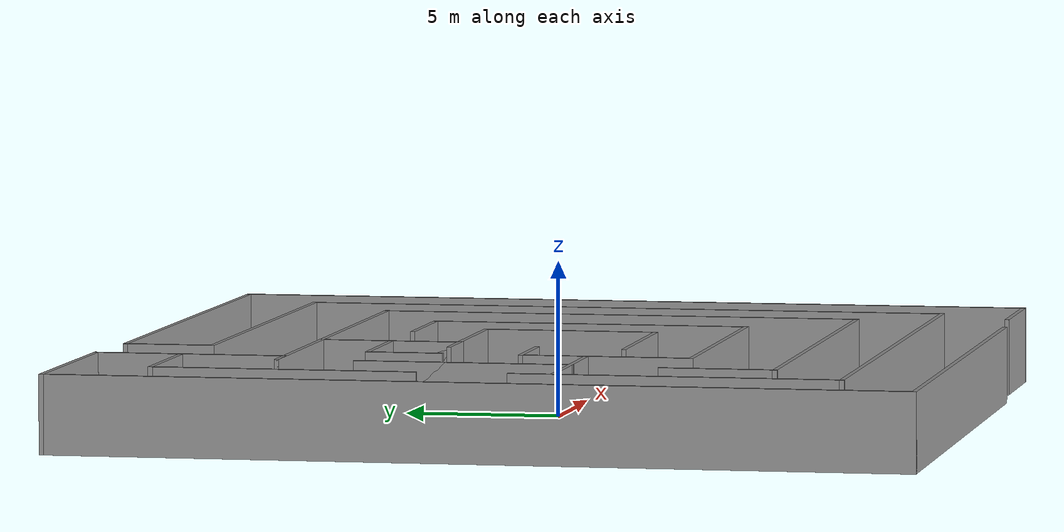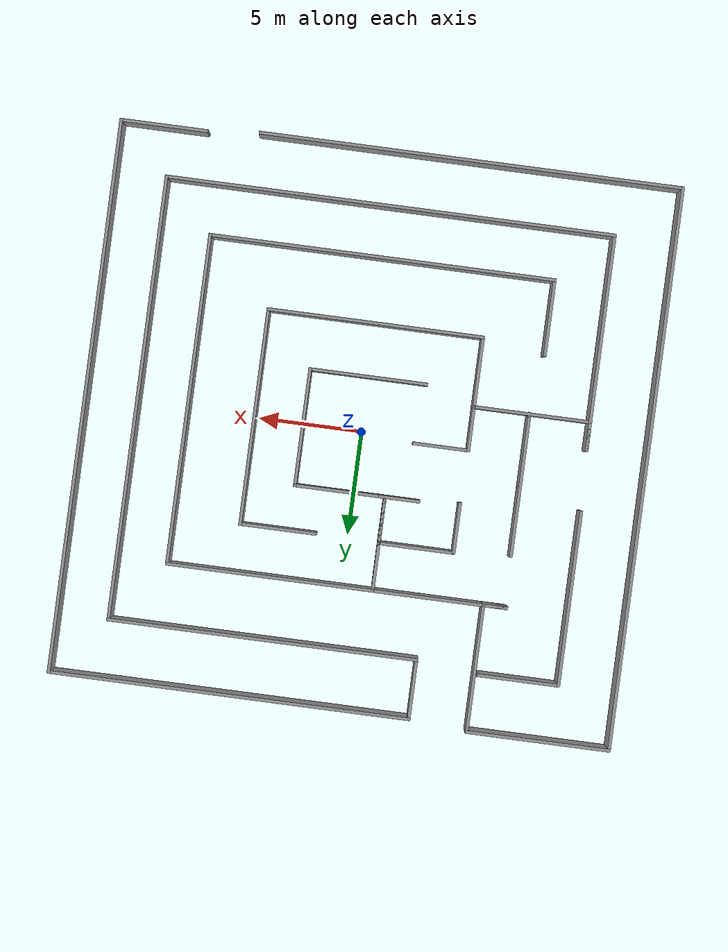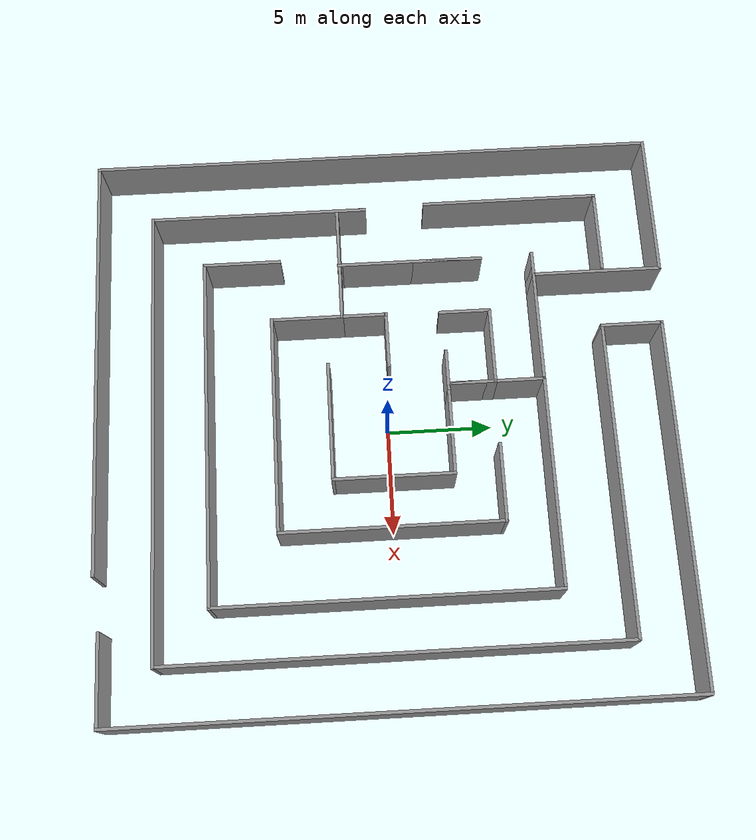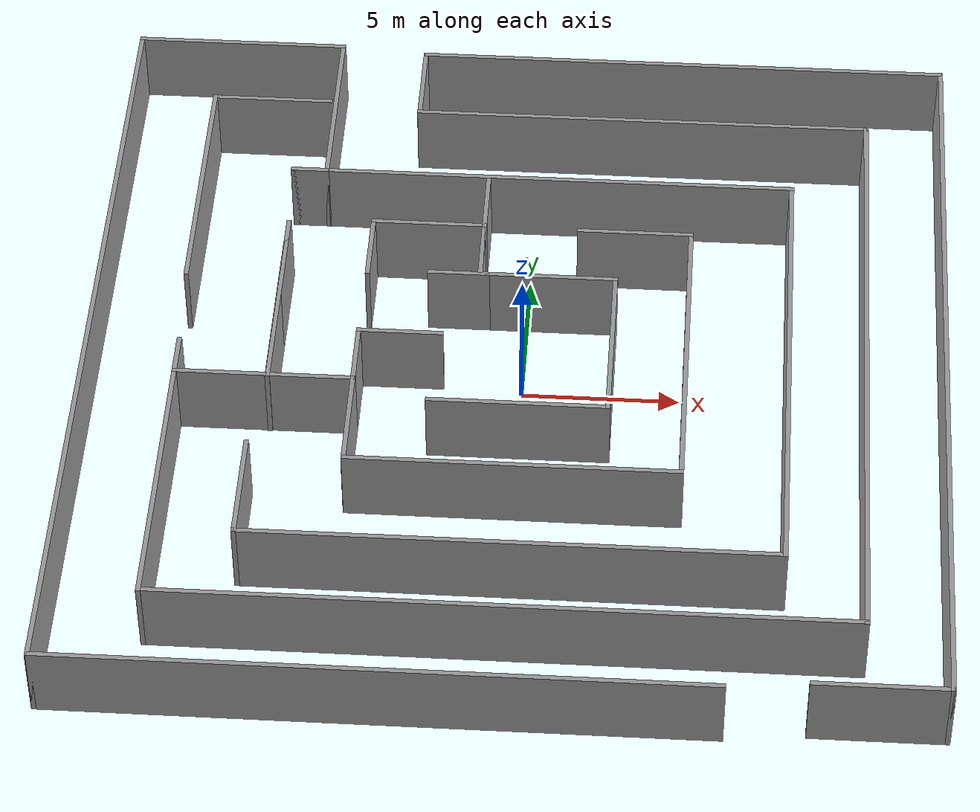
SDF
<?xml version='1.0'?>
<sdf version='1.7'>
  <model name='maze_final'>
    <pose>-0.197673 4.5e-05 0 0 -0 0</pose>
    <link name='Wall_0'>
      <collision name='Wall_0_Collision'>
        <geometry>
          <box>
            <size>7 0.15 2.5</size>
          </box>
        </geometry>
        <pose>0 0 1.25 0 -0 0</pose>
      </collision>
      <visual name='Wall_0_Visual'>
        <pose>0 0 1.25 0 -0 0</pose>
        <geometry>
          <box>
            <size>7 0.15 2.5</size>
          </box>
        </geometry>
        <material>
          <script>
            <uri>file://media/materials/scripts/gazebo.material</uri>
            <name>Gazebo/Grey</name>
          </script>
          <ambient>1 1 1 1</ambient>
        </material>
        <meta>
          <layer>0</layer>
        </meta>
      </visual>
      <pose>-10.09 13.55 0 0 -0 3.14159</pose>
    </link>
    <link name='Wall_1'>
      <collision name='Wall_1_Collision'>
        <geometry>
          <box>
            <size>27.25 0.15 2.5</size>
          </box>
        </geometry>
        <pose>0 0 1.25 0 -0 0</pose>
      </collision>
      <visual name='Wall_1_Visual'>
        <pose>0 0 1.25 0 -0 0</pose>
        <geometry>
          <box>
            <size>27.25 0.15 2.5</size>
          </box>
        </geometry>
        <material>
          <script>
            <uri>file://media/materials/scripts/gazebo.material</uri>
            <name>Gazebo/Grey</name>
          </script>
          <ambient>1 1 1 1</ambient>
        </material>
        <meta>
          <layer>0</layer>
        </meta>
      </visual>
      <pose>-13.515 -0 0 0 -0 -1.5708</pose>
    </link>
    <link name='Wall_11'>
      <collision name='Wall_11_Collision'>
        <geometry>
          <box>
            <size>4 0.15 2.5</size>
          </box>
        </geometry>
        <pose>0 0 1.25 0 -0 0</pose>
      </collision>
      <visual name='Wall_11_Visual'>
        <pose>0 0 1.25 0 -0 0</pose>
        <geometry>
          <box>
            <size>4 0.15 2.5</size>
          </box>
        </geometry>
        <material>
          <script>
            <uri>file://media/materials/scripts/gazebo.material</uri>
            <name>Gazebo/Grey</name>
          </script>
          <ambient>1 1 1 1</ambient>
        </material>
        <meta>
          <layer>0</layer>
        </meta>
      </visual>
      <pose>-8.79 10.79 0 0 -0 3.14159</pose>
    </link>
    <link name='Wall_12'>
      <collision name='Wall_12_Collision'>
        <geometry>
          <box>
            <size>8.5 0.15 2.5</size>
          </box>
        </geometry>
        <pose>0 0 1.25 0 -0 0</pose>
      </collision>
      <visual name='Wall_12_Visual'>
        <pose>0 0 1.25 0 -0 0</pose>
        <geometry>
          <box>
            <size>8.5 0.15 2.5</size>
          </box>
        </geometry>
        <material>
          <script>
            <uri>file://media/materials/scripts/gazebo.material</uri>
            <name>Gazebo/Grey</name>
          </script>
          <ambient>1 1 1 1</ambient>
        </material>
        <meta>
          <layer>0</layer>
        </meta>
      </visual>
      <pose>-10.715 6.615 0 0 -0 -1.5708</pose>
    </link>
    <link name='Wall_14'>
      <collision name='Wall_14_Collision'>
        <geometry>
          <box>
            <size>4.25 0.15 2.5</size>
          </box>
        </geometry>
        <pose>0 0 1.25 0 -0 0</pose>
      </collision>
      <visual name='Wall_14_Visual'>
        <pose>0 0 1.25 0 -0 0</pose>
        <geometry>
          <box>
            <size>4.25 0.15 2.5</size>
          </box>
        </geometry>
        <material>
          <script>
            <uri>file://media/materials/scripts/gazebo.material</uri>
            <name>Gazebo/Grey</name>
          </script>
          <ambient>1 1 1 1</ambient>
        </material>
        <meta>
          <layer>0</layer>
        </meta>
      </visual>
      <pose>11.465 -13.29 0 0 -0 0</pose>
    </link>
    <link name='Wall_15'>
      <collision name='Wall_15_Collision'>
        <geometry>
          <box>
            <size>26.75 0.15 2.5</size>
          </box>
        </geometry>
        <pose>0 0 1.25 0 -0 0</pose>
      </collision>
      <visual name='Wall_15_Visual'>
        <pose>0 0 1.25 0 -0 0</pose>
        <geometry>
          <box>
            <size>26.75 0.15 2.5</size>
          </box>
        </geometry>
        <material>
          <script>
            <uri>file://media/materials/scripts/gazebo.material</uri>
            <name>Gazebo/Grey</name>
          </script>
          <ambient>1 1 1 1</ambient>
        </material>
        <meta>
          <layer>0</layer>
        </meta>
      </visual>
      <pose>13.515 0.01 0 0 -0 1.5708</pose>
    </link>
    <link name='Wall_16'>
      <collision name='Wall_16_Collision'>
        <geometry>
          <box>
            <size>17.5 0.15 2.5</size>
          </box>
        </geometry>
        <pose>0 0 1.25 0 -0 0</pose>
      </collision>
      <visual name='Wall_16_Visual'>
        <pose>0 0 1.25 0 -0 0</pose>
        <geometry>
          <box>
            <size>17.5 0.15 2.5</size>
          </box>
        </geometry>
        <material>
          <script>
            <uri>file://media/materials/scripts/gazebo.material</uri>
            <name>Gazebo/Grey</name>
          </script>
          <ambient>1 1 1 1</ambient>
        </material>
        <meta>
          <layer>0</layer>
        </meta>
      </visual>
      <pose>4.84 13.31 0 0 -0 3.14159</pose>
    </link>
    <link name='Wall_17'>
      <collision name='Wall_17_Collision'>
        <geometry>
          <box>
            <size>3 0.15 2.5</size>
          </box>
        </geometry>
        <pose>0 0 1.25 0 -0 0</pose>
      </collision>
      <visual name='Wall_17_Visual'>
        <pose>0 0 1.25 0 -0 0</pose>
        <geometry>
          <box>
            <size>3 0.15 2.5</size>
          </box>
        </geometry>
        <material>
          <script>
            <uri>file://media/materials/scripts/gazebo.material</uri>
            <name>Gazebo/Grey</name>
          </script>
          <ambient>1 1 1 1</ambient>
        </material>
        <meta>
          <layer>0</layer>
        </meta>
      </visual>
      <pose>-3.835 11.885 0 0 -0 -1.5708</pose>
    </link>
    <link name='Wall_18'>
      <collision name='Wall_18_Collision'>
        <geometry>
          <box>
            <size>15 0.15 2.5</size>
          </box>
        </geometry>
        <pose>0 0 1.25 0 -0 0</pose>
      </collision>
      <visual name='Wall_18_Visual'>
        <pose>0 0 1.25 0 -0 0</pose>
        <geometry>
          <box>
            <size>15 0.15 2.5</size>
          </box>
        </geometry>
        <material>
          <script>
            <uri>file://media/materials/scripts/gazebo.material</uri>
            <name>Gazebo/Grey</name>
          </script>
          <ambient>1 1 1 1</ambient>
        </material>
        <meta>
          <layer>0</layer>
        </meta>
      </visual>
      <pose>3.59 10.46 0 0 -0 0</pose>
    </link>
    <link name='Wall_19'>
      <collision name='Wall_19_Collision'>
        <geometry>
          <box>
            <size>21.5 0.15 2.5</size>
          </box>
        </geometry>
        <pose>0 0 1.25 0 -0 0</pose>
      </collision>
      <visual name='Wall_19_Visual'>
        <pose>0 0 1.25 0 -0 0</pose>
        <geometry>
          <box>
            <size>21.5 0.15 2.5</size>
          </box>
        </geometry>
        <material>
          <script>
            <uri>file://media/materials/scripts/gazebo.material</uri>
            <name>Gazebo/Grey</name>
          </script>
          <ambient>1 1 1 1</ambient>
        </material>
        <meta>
          <layer>0</layer>
        </meta>
      </visual>
      <pose>11.015 -0.215 0 0 -0 -1.5708</pose>
    </link>
    <link name='Wall_2'>
      <collision name='Wall_2_Collision'>
        <geometry>
          <box>
            <size>20.5 0.15 2.5</size>
          </box>
        </geometry>
        <pose>0 0 1.25 0 -0 0</pose>
      </collision>
      <visual name='Wall_2_Visual'>
        <pose>0 0 1.25 0 -0 0</pose>
        <geometry>
          <box>
            <size>20.5 0.15 2.5</size>
          </box>
        </geometry>
        <material>
          <script>
            <uri>file://media/materials/scripts/gazebo.material</uri>
            <name>Gazebo/Grey</name>
          </script>
          <ambient>1 1 1 1</ambient>
        </material>
        <meta>
          <layer>0</layer>
        </meta>
      </visual>
      <pose>-3.34 -13.55 0 0 -0 0</pose>
    </link>
    <link name='Wall_20'>
      <collision name='Wall_20_Collision'>
        <geometry>
          <box>
            <size>21.75 0.15 2.5</size>
          </box>
        </geometry>
        <pose>0 0 1.25 0 -0 0</pose>
      </collision>
      <visual name='Wall_20_Visual'>
        <pose>0 0 1.25 0 -0 0</pose>
        <geometry>
          <box>
            <size>21.75 0.15 2.5</size>
          </box>
        </geometry>
        <material>
          <script>
            <uri>file://media/materials/scripts/gazebo.material</uri>
            <name>Gazebo/Grey</name>
          </script>
          <ambient>1 1 1 1</ambient>
        </material>
        <meta>
          <layer>0</layer>
        </meta>
      </visual>
      <pose>0.215 -10.89 0 0 -0 3.14159</pose>
    </link>
    <link name='Wall_21'>
      <collision name='Wall_21_Collision'>
        <geometry>
          <box>
            <size>10.5 0.15 2.5</size>
          </box>
        </geometry>
        <pose>0 0 1.25 0 -0 0</pose>
      </collision>
      <visual name='Wall_21_Visual'>
        <pose>0 0 1.25 0 -0 0</pose>
        <geometry>
          <box>
            <size>10.5 0.15 2.5</size>
          </box>
        </geometry>
        <material>
          <script>
            <uri>file://media/materials/scripts/gazebo.material</uri>
            <name>Gazebo/Grey</name>
          </script>
          <ambient>1 1 1 1</ambient>
        </material>
        <meta>
          <layer>0</layer>
        </meta>
      </visual>
      <pose>-10.585 -5.715 0 0 -0 1.5708</pose>
    </link>
    <link name='Wall_22'>
      <collision name='Wall_22_Collision'>
        <geometry>
          <box>
            <size>1.5 0.15 2.5</size>
          </box>
        </geometry>
        <pose>0 0 1.25 0 -0 0</pose>
      </collision>
      <visual name='Wall_22_Visual'>
        <pose>0 0 1.25 0 -0 0</pose>
        <geometry>
          <box>
            <size>1.5 0.15 2.5</size>
          </box>
        </geometry>
        <material>
          <script>
            <uri>file://media/materials/scripts/gazebo.material</uri>
            <name>Gazebo/Grey</name>
          </script>
          <ambient>1 1 1 1</ambient>
        </material>
        <meta>
          <layer>0</layer>
        </meta>
      </visual>
      <pose>-10.585 -1.215 0 0 -0 -1.5708</pose>
    </link>
    <link name='Wall_23'>
      <collision name='Wall_23_Collision'>
        <geometry>
          <box>
            <size>5.75 0.15 2.5</size>
          </box>
        </geometry>
        <pose>0 0 1.25 0 -0 0</pose>
      </collision>
      <visual name='Wall_23_Visual'>
        <pose>0 0 1.25 0 -0 0</pose>
        <geometry>
          <box>
            <size>5.75 0.15 2.5</size>
          </box>
        </geometry>
        <material>
          <script>
            <uri>file://media/materials/scripts/gazebo.material</uri>
            <name>Gazebo/Grey</name>
          </script>
          <ambient>1 1 1 1</ambient>
        </material>
        <meta>
          <layer>0</layer>
        </meta>
      </visual>
      <pose>-7.785 -1.89 0 0 -0 0</pose>
    </link>
    <link name='Wall_24'>
      <collision name='Wall_24_Collision'>
        <geometry>
          <box>
            <size>2.25 0.15 2.5</size>
          </box>
        </geometry>
        <pose>0 0 1.25 0 -0 0</pose>
      </collision>
      <visual name='Wall_24_Visual'>
        <pose>0 0 1.25 0 -0 0</pose>
        <geometry>
          <box>
            <size>2.25 0.15 2.5</size>
          </box>
        </geometry>
        <material>
          <script>
            <uri>file://media/materials/scripts/gazebo.material</uri>
            <name>Gazebo/Grey</name>
          </script>
          <ambient>1 1 1 1</ambient>
        </material>
        <meta>
          <layer>0</layer>
        </meta>
      </visual>
      <pose>-4.985 -0.84 0 0 -0 1.5708</pose>
    </link>
    <link name='Wall_25'>
      <collision name='Wall_25_Collision'>
        <geometry>
          <box>
            <size>2.75 0.15 2.5</size>
          </box>
        </geometry>
        <pose>0 0 1.25 0 -0 0</pose>
      </collision>
      <visual name='Wall_25_Visual'>
        <pose>0 0 1.25 0 -0 0</pose>
        <geometry>
          <box>
            <size>2.75 0.15 2.5</size>
          </box>
        </geometry>
        <material>
          <script>
            <uri>file://media/materials/scripts/gazebo.material</uri>
            <name>Gazebo/Grey</name>
          </script>
          <ambient>1 1 1 1</ambient>
        </material>
        <meta>
          <layer>0</layer>
        </meta>
      </visual>
      <pose>-3.685 0.21 0 0 -0 0</pose>
    </link>
    <link name='Wall_27'>
      <collision name='Wall_27_Collision'>
        <geometry>
          <box>
            <size>3.5 0.15 2.5</size>
          </box>
        </geometry>
        <pose>0 0 1.25 0 -0 0</pose>
      </collision>
      <visual name='Wall_27_Visual'>
        <pose>0 0 1.25 0 -0 0</pose>
        <geometry>
          <box>
            <size>3.5 0.15 2.5</size>
          </box>
        </geometry>
        <material>
          <script>
            <uri>file://media/materials/scripts/gazebo.material</uri>
            <name>Gazebo/Grey</name>
          </script>
          <ambient>1 1 1 1</ambient>
        </material>
        <meta>
          <layer>0</layer>
        </meta>
      </visual>
      <pose>-4.985 -3.565 0 0 -0 -1.5708</pose>
    </link>
    <link name='Wall_28'>
      <collision name='Wall_28_Collision'>
        <geometry>
          <box>
            <size>10.5 0.15 2.5</size>
          </box>
        </geometry>
        <pose>0 0 1.25 0 -0 0</pose>
      </collision>
      <visual name='Wall_28_Visual'>
        <pose>0 0 1.25 0 -0 0</pose>
        <geometry>
          <box>
            <size>10.5 0.15 2.5</size>
          </box>
        </geometry>
        <material>
          <script>
            <uri>file://media/materials/scripts/gazebo.material</uri>
            <name>Gazebo/Grey</name>
          </script>
          <ambient>1 1 1 1</ambient>
        </material>
        <meta>
          <layer>0</layer>
        </meta>
      </visual>
      <pose>0.19 -5.24 0 0 -0 0</pose>
    </link>
    <link name='Wall_29'>
      <collision name='Wall_29_Collision'>
        <geometry>
          <box>
            <size>10.5 0.15 2.5</size>
          </box>
        </geometry>
        <pose>0 0 1.25 0 -0 0</pose>
      </collision>
      <visual name='Wall_29_Visual'>
        <pose>0 0 1.25 0 -0 0</pose>
        <geometry>
          <box>
            <size>10.5 0.15 2.5</size>
          </box>
        </geometry>
        <material>
          <script>
            <uri>file://media/materials/scripts/gazebo.material</uri>
            <name>Gazebo/Grey</name>
          </script>
          <ambient>1 1 1 1</ambient>
        </material>
        <meta>
          <layer>0</layer>
        </meta>
      </visual>
      <pose>5.365 -0.065 0 0 -0 1.5708</pose>
    </link>
    <link name='Wall_30'>
      <collision name='Wall_30_Collision'>
        <geometry>
          <box>
            <size>3.75 0.15 2.5</size>
          </box>
        </geometry>
        <pose>0 0 1.25 0 -0 0</pose>
      </collision>
      <visual name='Wall_30_Visual'>
        <pose>0 0 1.25 0 -0 0</pose>
        <geometry>
          <box>
            <size>3.75 0.15 2.5</size>
          </box>
        </geometry>
        <material>
          <script>
            <uri>file://media/materials/scripts/gazebo.material</uri>
            <name>Gazebo/Grey</name>
          </script>
          <ambient>1 1 1 1</ambient>
        </material>
        <meta>
          <layer>0</layer>
        </meta>
      </visual>
      <pose>3.565 5.11 0 0 -0 3.14159</pose>
    </link>
    <link name='Wall_32'>
      <collision name='Wall_32_Collision'>
        <geometry>
          <box>
            <size>6.75 0.15 2.5</size>
          </box>
        </geometry>
        <pose>0 0 1.25 0 -0 0</pose>
      </collision>
      <visual name='Wall_32_Visual'>
        <pose>0 0 1.25 0 -0 0</pose>
        <geometry>
          <box>
            <size>6.75 0.15 2.5</size>
          </box>
        </geometry>
        <material>
          <script>
            <uri>file://media/materials/scripts/gazebo.material</uri>
            <name>Gazebo/Grey</name>
          </script>
          <ambient>1 1 1 1</ambient>
        </material>
        <meta>
          <layer>0</layer>
        </meta>
      </visual>
      <pose>-7.66343 1.63707 0 0 -0 1.5708</pose>
    </link>
    <link name='Wall_33'>
      <collision name='Wall_33_Collision'>
        <geometry>
          <box>
            <size>7 0.15 2.5</size>
          </box>
        </geometry>
        <pose>0 0 1.25 0 -0 0</pose>
      </collision>
      <visual name='Wall_33_Visual'>
        <pose>0 0 1.25 0 -0 0</pose>
        <geometry>
          <box>
            <size>7 0.15 2.5</size>
          </box>
        </geometry>
        <material>
          <script>
            <uri>file://media/materials/scripts/gazebo.material</uri>
            <name>Gazebo/Grey</name>
          </script>
          <ambient>1 1 1 1</ambient>
        </material>
        <meta>
          <layer>0</layer>
        </meta>
      </visual>
      <pose>-7.66343 1.51207 0 0 -0 -1.5708</pose>
    </link>
    <link name='Wall_36'>
      <collision name='Wall_36_Collision'>
        <geometry>
          <box>
            <size>2 0.15 2.5</size>
          </box>
        </geometry>
        <pose>0 0 1.25 0 -0 0</pose>
      </collision>
      <visual name='Wall_36_Visual'>
        <pose>0 0 1.25 0 -0 0</pose>
        <geometry>
          <box>
            <size>2 0.15 2.5</size>
          </box>
        </geometry>
        <material>
          <script>
            <uri>file://media/materials/scripts/gazebo.material</uri>
            <name>Gazebo/Grey</name>
          </script>
          <ambient>1 1 1 1</ambient>
        </material>
        <meta>
          <layer>0</layer>
        </meta>
      </visual>
      <pose>-2.01327 2.93968 0 0 -0 3.14159</pose>
    </link>
    <link name='Wall_38'>
      <collision name='Wall_38_Collision'>
        <geometry>
          <box>
            <size>4.25 0.15 2.5</size>
          </box>
        </geometry>
        <pose>0 0 1.25 0 -0 0</pose>
      </collision>
      <visual name='Wall_38_Visual'>
        <pose>0 0 1.25 0 -0 0</pose>
        <geometry>
          <box>
            <size>4.25 0.15 2.5</size>
          </box>
        </geometry>
        <material>
          <script>
            <uri>file://media/materials/scripts/gazebo.material</uri>
            <name>Gazebo/Grey</name>
          </script>
          <ambient>1 1 1 1</ambient>
        </material>
        <meta>
          <layer>0</layer>
        </meta>
      </visual>
      <pose>0.961733 2.93968 0 0 -0 0</pose>
    </link>
    <link name='Wall_39'>
      <collision name='Wall_39_Collision'>
        <geometry>
          <box>
            <size>5.75 0.15 2.5</size>
          </box>
        </geometry>
        <pose>0 0 1.25 0 -0 0</pose>
      </collision>
      <visual name='Wall_39_Visual'>
        <pose>0 0 1.25 0 -0 0</pose>
        <geometry>
          <box>
            <size>5.75 0.15 2.5</size>
          </box>
        </geometry>
        <material>
          <script>
            <uri>file://media/materials/scripts/gazebo.material</uri>
            <name>Gazebo/Grey</name>
          </script>
          <ambient>1 1 1 1</ambient>
        </material>
        <meta>
          <layer>0</layer>
        </meta>
      </visual>
      <pose>3.01173 0.139683 0 0 -0 -1.5708</pose>
    </link>
    <link name='Wall_4'>
      <collision name='Wall_4_Collision'>
        <geometry>
          <box>
            <size>6.25 0.15 2.5</size>
          </box>
        </geometry>
        <pose>0 0 1.25 0 -0 0</pose>
      </collision>
      <visual name='Wall_4_Visual'>
        <pose>0 0 1.25 0 -0 0</pose>
        <geometry>
          <box>
            <size>6.25 0.15 2.5</size>
          </box>
        </geometry>
        <material>
          <script>
            <uri>file://media/materials/scripts/gazebo.material</uri>
            <name>Gazebo/Grey</name>
          </script>
          <ambient>1 1 1 1</ambient>
        </material>
        <meta>
          <layer>0</layer>
        </meta>
      </visual>
      <pose>-6.665 10.5 0 0 -0 -1.5708</pose>
    </link>
    <link name='Wall_40'>
      <collision name='Wall_40_Collision'>
        <geometry>
          <box>
            <size>5.75 0.15 2.5</size>
          </box>
        </geometry>
        <pose>0 0 1.25 0 -0 0</pose>
      </collision>
      <visual name='Wall_40_Visual'>
        <pose>0 0 1.25 0 -0 0</pose>
        <geometry>
          <box>
            <size>5.75 0.15 2.5</size>
          </box>
        </geometry>
        <material>
          <script>
            <uri>file://media/materials/scripts/gazebo.material</uri>
            <name>Gazebo/Grey</name>
          </script>
          <ambient>1 1 1 1</ambient>
        </material>
        <meta>
          <layer>0</layer>
        </meta>
      </visual>
      <pose>0.211733 -2.66032 0 0 -0 3.14159</pose>
    </link>
    <link name='Wall_43'>
      <collision name='Wall_43_Collision'>
        <geometry>
          <box>
            <size>2.5 0.15 2.5</size>
          </box>
        </geometry>
        <pose>0 0 1.25 0 -0 0</pose>
      </collision>
      <visual name='Wall_43_Visual'>
        <pose>0 0 1.25 0 -0 0</pose>
        <geometry>
          <box>
            <size>2.5 0.15 2.5</size>
          </box>
        </geometry>
        <material>
          <script>
            <uri>file://media/materials/scripts/gazebo.material</uri>
            <name>Gazebo/Grey</name>
          </script>
          <ambient>1 1 1 1</ambient>
        </material>
        <meta>
          <layer>0</layer>
        </meta>
      </visual>
      <pose>-4.92816 3.98318 0 0 -0 1.5708</pose>
    </link>
    <link name='Wall_44'>
      <collision name='Wall_44_Collision'>
        <geometry>
          <box>
            <size>3.75 0.15 2.5</size>
          </box>
        </geometry>
        <pose>0 0 1.25 0 -0 0</pose>
      </collision>
      <visual name='Wall_44_Visual'>
        <pose>0 0 1.25 0 -0 0</pose>
        <geometry>
          <box>
            <size>3.75 0.15 2.5</size>
          </box>
        </geometry>
        <material>
          <script>
            <uri>file://media/materials/scripts/gazebo.material</uri>
            <name>Gazebo/Grey</name>
          </script>
          <ambient>1 1 1 1</ambient>
        </material>
        <meta>
          <layer>0</layer>
        </meta>
      </visual>
      <pose>-3.12816 5.15818 0 0 -0 0</pose>
    </link>
    <link name='Wall_5'>
      <collision name='Wall_5_Collision'>
        <geometry>
          <box>
            <size>1.25 0.15 2.5</size>
          </box>
        </geometry>
        <pose>0 0 1.25 0 -0 0</pose>
      </collision>
      <visual name='Wall_5_Visual'>
        <pose>0 0 1.25 0 -0 0</pose>
        <geometry>
          <box>
            <size>1.25 0.15 2.5</size>
          </box>
        </geometry>
        <material>
          <script>
            <uri>file://media/materials/scripts/gazebo.material</uri>
            <name>Gazebo/Grey</name>
          </script>
          <ambient>1 1 1 1</ambient>
        </material>
        <meta>
          <layer>0</layer>
        </meta>
      </visual>
      <pose>-7.215 7.45 0 0 -0 3.14159</pose>
    </link>
    <link name='Wall_50'>
      <collision name='Wall_50_Collision'>
        <geometry>
          <box>
            <size>2.25 0.15 2.5</size>
          </box>
        </geometry>
        <pose>0 0 1.25 0 -0 0</pose>
      </collision>
      <visual name='Wall_50_Visual'>
        <pose>0 0 1.25 0 -0 0</pose>
        <geometry>
          <box>
            <size>2.25 0.15 2.5</size>
          </box>
        </geometry>
        <material>
          <script>
            <uri>file://media/materials/scripts/gazebo.material</uri>
            <name>Gazebo/Grey</name>
          </script>
          <ambient>1 1 1 1</ambient>
        </material>
        <meta>
          <layer>0</layer>
        </meta>
      </visual>
      <pose>-1.32816 4.10818 0 0 -0 -1.5708</pose>
    </link>
    <link name='Wall_51'>
      <collision name='Wall_51_Collision'>
        <geometry>
          <box>
            <size>4.5 0.15 2.5</size>
          </box>
        </geometry>
        <pose>0 0 1.25 0 -0 0</pose>
      </collision>
      <visual name='Wall_51_Visual'>
        <pose>0 0 1.25 0 -0 0</pose>
        <geometry>
          <box>
            <size>4.5 0.15 2.5</size>
          </box>
        </geometry>
        <material>
          <script>
            <uri>file://media/materials/scripts/gazebo.material</uri>
            <name>Gazebo/Grey</name>
          </script>
          <ambient>1 1 1 1</ambient>
        </material>
        <meta>
          <layer>0</layer>
        </meta>
      </visual>
      <pose>-1.32816 5.23318 0 0 -0 1.5708</pose>
    </link>
    <link name='Wall_6'>
      <collision name='Wall_6_Collision'>
        <geometry>
          <box>
            <size>16.5 0.15 2.5</size>
          </box>
        </geometry>
        <pose>0 0 1.25 0 -0 0</pose>
      </collision>
      <visual name='Wall_6_Visual'>
        <pose>0 0 1.25 0 -0 0</pose>
        <geometry>
          <box>
            <size>16.5 0.15 2.5</size>
          </box>
        </geometry>
        <material>
          <script>
            <uri>file://media/materials/scripts/gazebo.material</uri>
            <name>Gazebo/Grey</name>
          </script>
          <ambient>1 1 1 1</ambient>
        </material>
        <meta>
          <layer>0</layer>
        </meta>
      </visual>
      <pose>0.41 7.45 0 0 -0 0</pose>
    </link>
    <link name='Wall_7'>
      <collision name='Wall_7_Collision'>
        <geometry>
          <box>
            <size>16 0.15 2.5</size>
          </box>
        </geometry>
        <pose>0 0 1.25 0 -0 0</pose>
      </collision>
      <visual name='Wall_7_Visual'>
        <pose>0 0 1.25 0 -0 0</pose>
        <geometry>
          <box>
            <size>16 0.15 2.5</size>
          </box>
        </geometry>
        <material>
          <script>
            <uri>file://media/materials/scripts/gazebo.material</uri>
            <name>Gazebo/Grey</name>
          </script>
          <ambient>1 1 1 1</ambient>
        </material>
        <meta>
          <layer>0</layer>
        </meta>
      </visual>
      <pose>8.585 -0.475 0 0 -0 -1.5708</pose>
    </link>
    <link name='Wall_8'>
      <collision name='Wall_8_Collision'>
        <geometry>
          <box>
            <size>16.75 0.15 2.5</size>
          </box>
        </geometry>
        <pose>0 0 1.25 0 -0 0</pose>
      </collision>
      <visual name='Wall_8_Visual'>
        <pose>0 0 1.25 0 -0 0</pose>
        <geometry>
          <box>
            <size>16.75 0.15 2.5</size>
          </box>
        </geometry>
        <material>
          <script>
            <uri>file://media/materials/scripts/gazebo.material</uri>
            <name>Gazebo/Grey</name>
          </script>
          <ambient>1 1 1 1</ambient>
        </material>
        <meta>
          <layer>0</layer>
        </meta>
      </visual>
      <pose>0.285 -8.4 0 0 -0 3.14159</pose>
    </link>
    <link name='Wall_9'>
      <collision name='Wall_9_Collision'>
        <geometry>
          <box>
            <size>3.75 0.15 2.5</size>
          </box>
        </geometry>
        <pose>0 0 1.25 0 -0 0</pose>
      </collision>
      <visual name='Wall_9_Visual'>
        <pose>0 0 1.25 0 -0 0</pose>
        <geometry>
          <box>
            <size>3.75 0.15 2.5</size>
          </box>
        </geometry>
        <material>
          <script>
            <uri>file://media/materials/scripts/gazebo.material</uri>
            <name>Gazebo/Grey</name>
          </script>
          <ambient>1 1 1 1</ambient>
        </material>
        <meta>
          <layer>0</layer>
        </meta>
      </visual>
      <pose>-8.015 -6.6 0 0 -0 1.5708</pose>
    </link>
    <static>1</static>
  </model>
</sdf>
